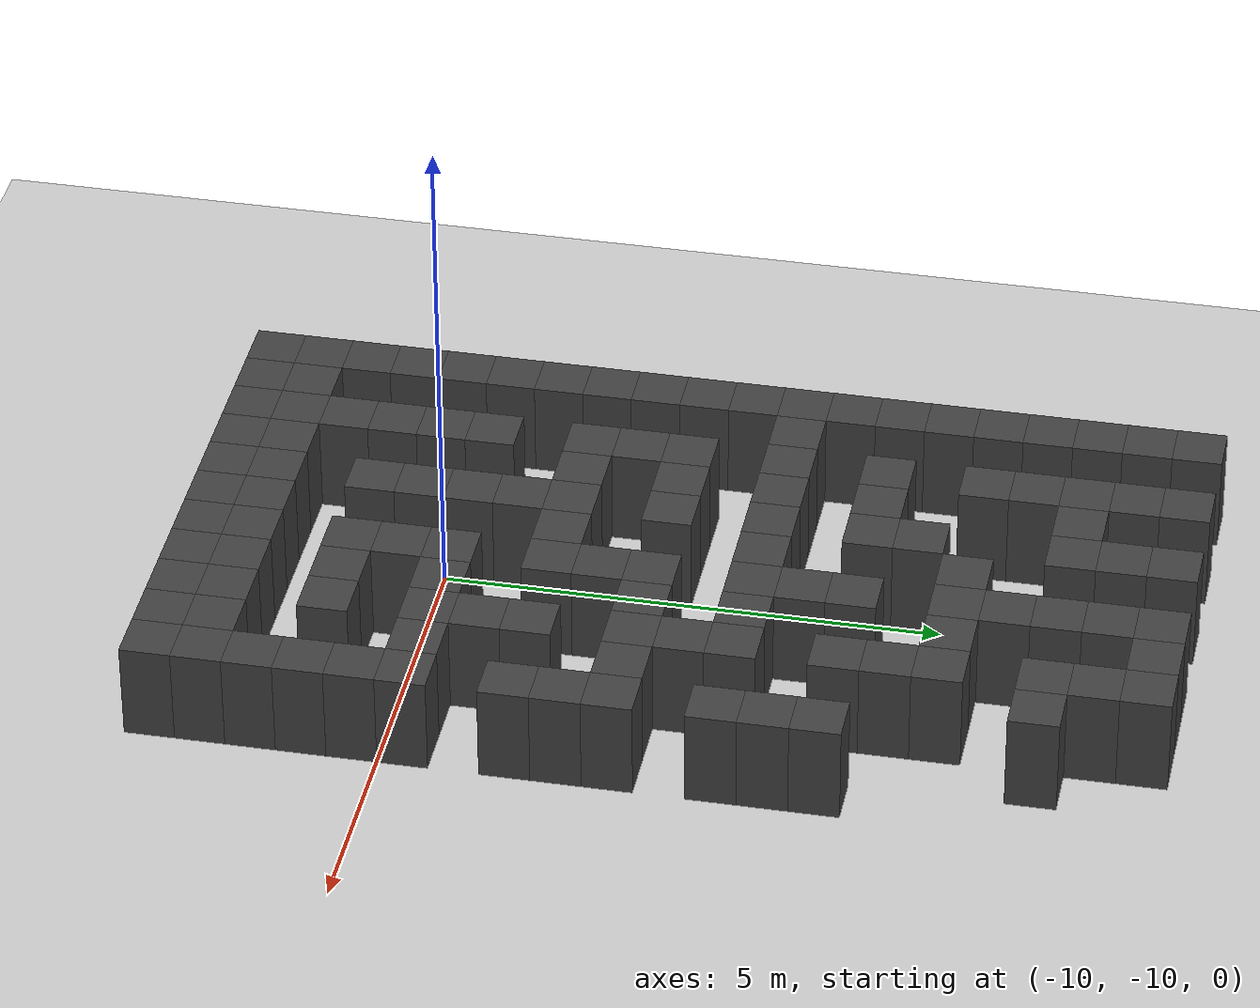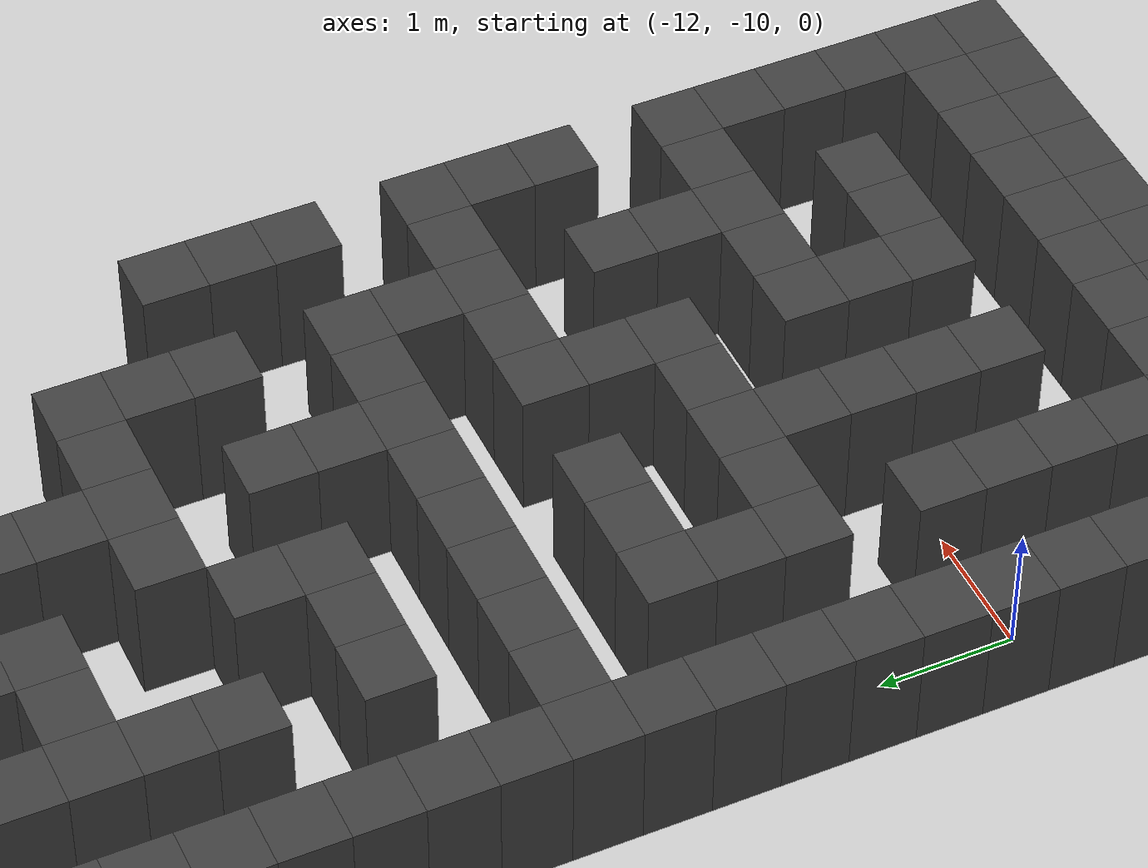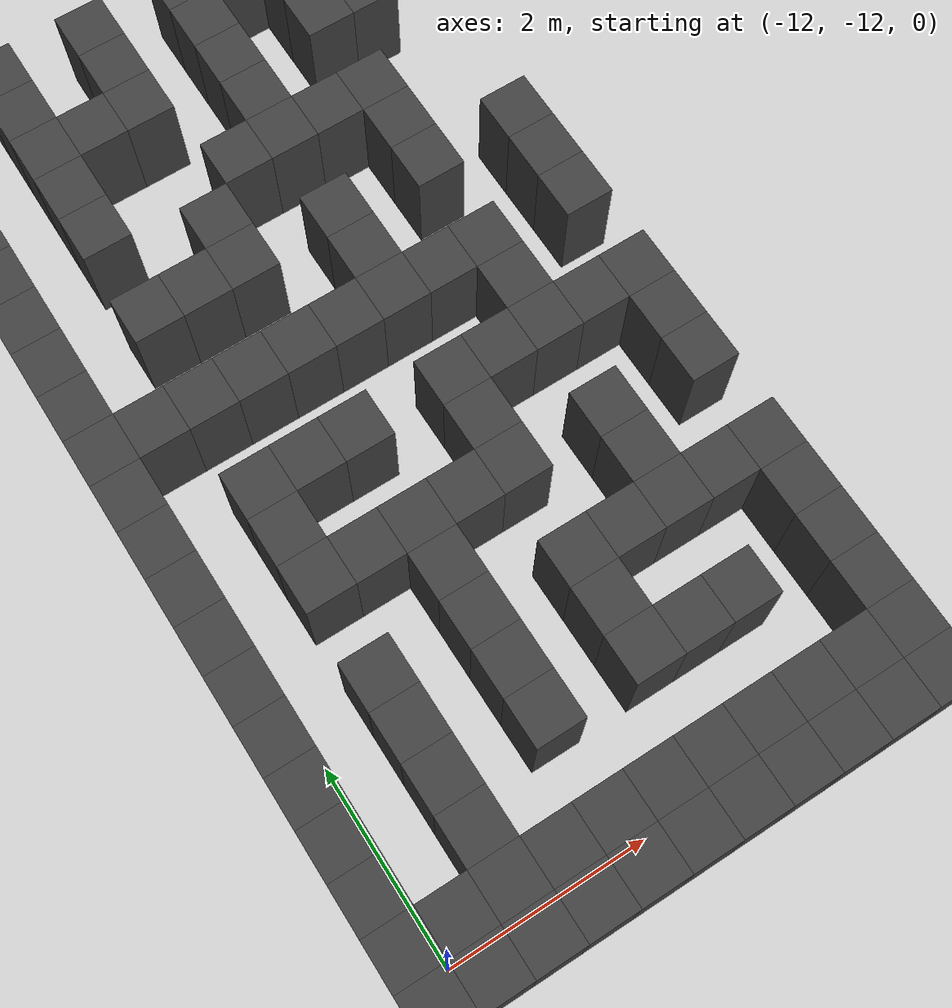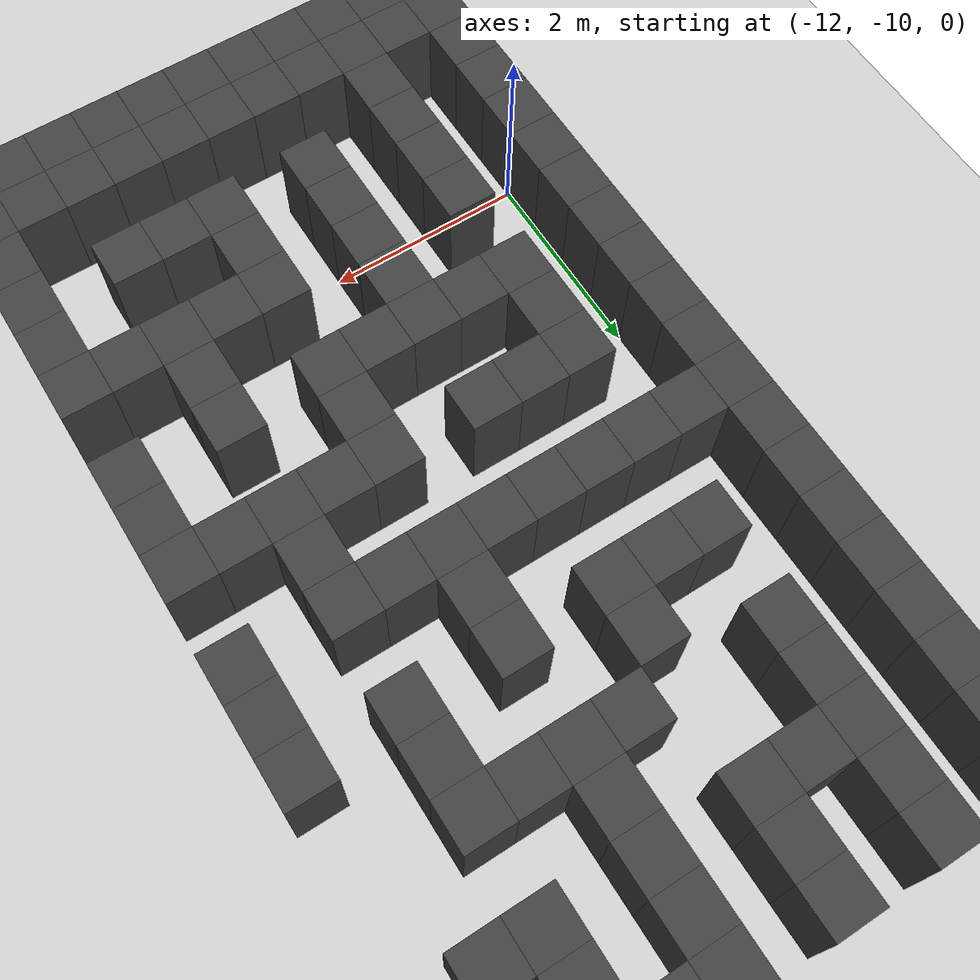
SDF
<sdf version="1.7">
 <world name="map_19815">
  <model name="ground_plane">
   <static>true</static>
   <link name="link">
    <collision name="collision">
     <geometry><plane><normal>0 0 1</normal><size>200 200</size></plane></geometry>
    </collision>
    <visual name="visual">
     <geometry><plane><normal>0 0 1</normal><size>200 200</size></plane></geometry>
     <material><ambient>0.8 0.8 0.8 1</ambient><diffuse>0.8 0.8 0.8 1</diffuse></material>
    </visual>
   </link>
  </model>
  <model name="maze_environment">
   <static>true</static>
   <link name="wall_782">
    <pose>-12.250 -2.750 0.500 0 0 0</pose>
    <collision name="col"><geometry><box><size>0.5 0.5 1.0</size></box></geometry></collision>
    <visual name="vis">
     <geometry><box><size>0.5 0.5 1.0</size></box></geometry>
     <material><ambient>0.15 0.15 0.15 1</ambient><diffuse>0.25 0.25 0.25 1</diffuse></material>
    </visual>
   </link>
   <link name="wall_783">
    <pose>-11.250 -2.750 0.500 0 0 0</pose>
    <collision name="col"><geometry><box><size>0.5 0.5 1.0</size></box></geometry></collision>
    <visual name="vis">
     <geometry><box><size>0.5 0.5 1.0</size></box></geometry>
     <material><ambient>0.15 0.15 0.15 1</ambient><diffuse>0.25 0.25 0.25 1</diffuse></material>
    </visual>
   </link>
   <link name="wall_784">
    <pose>-10.250 -2.750 0.500 0 0 0</pose>
    <collision name="col"><geometry><box><size>0.5 0.5 1.0</size></box></geometry></collision>
    <visual name="vis">
     <geometry><box><size>0.5 0.5 1.0</size></box></geometry>
     <material><ambient>0.15 0.15 0.15 1</ambient><diffuse>0.25 0.25 0.25 1</diffuse></material>
    </visual>
   </link>
   <link name="wall_785">
    <pose>-9.250 -2.750 0.500 0 0 0</pose>
    <collision name="col"><geometry><box><size>0.5 0.5 1.0</size></box></geometry></collision>
    <visual name="vis">
     <geometry><box><size>0.5 0.5 1.0</size></box></geometry>
     <material><ambient>0.15 0.15 0.15 1</ambient><diffuse>0.25 0.25 0.25 1</diffuse></material>
    </visual>
   </link>
   <link name="wall_786">
    <pose>-8.750 -2.750 0.500 0 0 0</pose>
    <collision name="col"><geometry><box><size>0.5 0.5 1.0</size></box></geometry></collision>
    <visual name="vis">
     <geometry><box><size>0.5 0.5 1.0</size></box></geometry>
     <material><ambient>0.15 0.15 0.15 1</ambient><diffuse>0.25 0.25 0.25 1</diffuse></material>
    </visual>
   </link>
   <link name="wall_787">
    <pose>-8.250 -2.750 0.500 0 0 0</pose>
    <collision name="col"><geometry><box><size>0.5 0.5 1.0</size></box></geometry></collision>
    <visual name="vis">
     <geometry><box><size>0.5 0.5 1.0</size></box></geometry>
     <material><ambient>0.15 0.15 0.15 1</ambient><diffuse>0.25 0.25 0.25 1</diffuse></material>
    </visual>
   </link>
   <link name="wall_817">
    <pose>-12.250 -3.250 0.500 0 0 0</pose>
    <collision name="col"><geometry><box><size>0.5 0.5 1.0</size></box></geometry></collision>
    <visual name="vis">
     <geometry><box><size>0.5 0.5 1.0</size></box></geometry>
     <material><ambient>0.15 0.15 0.15 1</ambient><diffuse>0.25 0.25 0.25 1</diffuse></material>
    </visual>
   </link>
   <link name="wall_818">
    <pose>-11.250 -3.250 0.500 0 0 0</pose>
    <collision name="col"><geometry><box><size>0.5 0.5 1.0</size></box></geometry></collision>
    <visual name="vis">
     <geometry><box><size>0.5 0.5 1.0</size></box></geometry>
     <material><ambient>0.15 0.15 0.15 1</ambient><diffuse>0.25 0.25 0.25 1</diffuse></material>
    </visual>
   </link>
   <link name="wall_819">
    <pose>-10.250 -3.250 0.500 0 0 0</pose>
    <collision name="col"><geometry><box><size>0.5 0.5 1.0</size></box></geometry></collision>
    <visual name="vis">
     <geometry><box><size>0.5 0.5 1.0</size></box></geometry>
     <material><ambient>0.15 0.15 0.15 1</ambient><diffuse>0.25 0.25 0.25 1</diffuse></material>
    </visual>
   </link>
   <link name="wall_820">
    <pose>-9.250 -3.250 0.500 0 0 0</pose>
    <collision name="col"><geometry><box><size>0.5 0.5 1.0</size></box></geometry></collision>
    <visual name="vis">
     <geometry><box><size>0.5 0.5 1.0</size></box></geometry>
     <material><ambient>0.15 0.15 0.15 1</ambient><diffuse>0.25 0.25 0.25 1</diffuse></material>
    </visual>
   </link>
   <link name="wall_821">
    <pose>-8.250 -3.250 0.500 0 0 0</pose>
    <collision name="col"><geometry><box><size>0.5 0.5 1.0</size></box></geometry></collision>
    <visual name="vis">
     <geometry><box><size>0.5 0.5 1.0</size></box></geometry>
     <material><ambient>0.15 0.15 0.15 1</ambient><diffuse>0.25 0.25 0.25 1</diffuse></material>
    </visual>
   </link>
   <link name="wall_836">
    <pose>-12.250 -3.750 0.500 0 0 0</pose>
    <collision name="col"><geometry><box><size>0.5 0.5 1.0</size></box></geometry></collision>
    <visual name="vis">
     <geometry><box><size>0.5 0.5 1.0</size></box></geometry>
     <material><ambient>0.15 0.15 0.15 1</ambient><diffuse>0.25 0.25 0.25 1</diffuse></material>
    </visual>
   </link>
   <link name="wall_837">
    <pose>-11.250 -3.750 0.500 0 0 0</pose>
    <collision name="col"><geometry><box><size>0.5 0.5 1.0</size></box></geometry></collision>
    <visual name="vis">
     <geometry><box><size>0.5 0.5 1.0</size></box></geometry>
     <material><ambient>0.15 0.15 0.15 1</ambient><diffuse>0.25 0.25 0.25 1</diffuse></material>
    </visual>
   </link>
   <link name="wall_838">
    <pose>-10.750 -3.750 0.500 0 0 0</pose>
    <collision name="col"><geometry><box><size>0.5 0.5 1.0</size></box></geometry></collision>
    <visual name="vis">
     <geometry><box><size>0.5 0.5 1.0</size></box></geometry>
     <material><ambient>0.15 0.15 0.15 1</ambient><diffuse>0.25 0.25 0.25 1</diffuse></material>
    </visual>
   </link>
   <link name="wall_839">
    <pose>-10.250 -3.750 0.500 0 0 0</pose>
    <collision name="col"><geometry><box><size>0.5 0.5 1.0</size></box></geometry></collision>
    <visual name="vis">
     <geometry><box><size>0.5 0.5 1.0</size></box></geometry>
     <material><ambient>0.15 0.15 0.15 1</ambient><diffuse>0.25 0.25 0.25 1</diffuse></material>
    </visual>
   </link>
   <link name="wall_840">
    <pose>-9.250 -3.750 0.500 0 0 0</pose>
    <collision name="col"><geometry><box><size>0.5 0.5 1.0</size></box></geometry></collision>
    <visual name="vis">
     <geometry><box><size>0.5 0.5 1.0</size></box></geometry>
     <material><ambient>0.15 0.15 0.15 1</ambient><diffuse>0.25 0.25 0.25 1</diffuse></material>
    </visual>
   </link>
   <link name="wall_841">
    <pose>-8.250 -3.750 0.500 0 0 0</pose>
    <collision name="col"><geometry><box><size>0.5 0.5 1.0</size></box></geometry></collision>
    <visual name="vis">
     <geometry><box><size>0.5 0.5 1.0</size></box></geometry>
     <material><ambient>0.15 0.15 0.15 1</ambient><diffuse>0.25 0.25 0.25 1</diffuse></material>
    </visual>
   </link>
   <link name="wall_842">
    <pose>-7.750 -3.750 0.500 0 0 0</pose>
    <collision name="col"><geometry><box><size>0.5 0.5 1.0</size></box></geometry></collision>
    <visual name="vis">
     <geometry><box><size>0.5 0.5 1.0</size></box></geometry>
     <material><ambient>0.15 0.15 0.15 1</ambient><diffuse>0.25 0.25 0.25 1</diffuse></material>
    </visual>
   </link>
   <link name="wall_871">
    <pose>-12.250 -4.250 0.500 0 0 0</pose>
    <collision name="col"><geometry><box><size>0.5 0.5 1.0</size></box></geometry></collision>
    <visual name="vis">
     <geometry><box><size>0.5 0.5 1.0</size></box></geometry>
     <material><ambient>0.15 0.15 0.15 1</ambient><diffuse>0.25 0.25 0.25 1</diffuse></material>
    </visual>
   </link>
   <link name="wall_872">
    <pose>-11.250 -4.250 0.500 0 0 0</pose>
    <collision name="col"><geometry><box><size>0.5 0.5 1.0</size></box></geometry></collision>
    <visual name="vis">
     <geometry><box><size>0.5 0.5 1.0</size></box></geometry>
     <material><ambient>0.15 0.15 0.15 1</ambient><diffuse>0.25 0.25 0.25 1</diffuse></material>
    </visual>
   </link>
   <link name="wall_873">
    <pose>-9.250 -4.250 0.500 0 0 0</pose>
    <collision name="col"><geometry><box><size>0.5 0.5 1.0</size></box></geometry></collision>
    <visual name="vis">
     <geometry><box><size>0.5 0.5 1.0</size></box></geometry>
     <material><ambient>0.15 0.15 0.15 1</ambient><diffuse>0.25 0.25 0.25 1</diffuse></material>
    </visual>
   </link>
   <link name="wall_886">
    <pose>-12.250 -4.750 0.500 0 0 0</pose>
    <collision name="col"><geometry><box><size>0.5 0.5 1.0</size></box></geometry></collision>
    <visual name="vis">
     <geometry><box><size>0.5 0.5 1.0</size></box></geometry>
     <material><ambient>0.15 0.15 0.15 1</ambient><diffuse>0.25 0.25 0.25 1</diffuse></material>
    </visual>
   </link>
   <link name="wall_887">
    <pose>-11.250 -4.750 0.500 0 0 0</pose>
    <collision name="col"><geometry><box><size>0.5 0.5 1.0</size></box></geometry></collision>
    <visual name="vis">
     <geometry><box><size>0.5 0.5 1.0</size></box></geometry>
     <material><ambient>0.15 0.15 0.15 1</ambient><diffuse>0.25 0.25 0.25 1</diffuse></material>
    </visual>
   </link>
   <link name="wall_888">
    <pose>-9.750 -4.750 0.500 0 0 0</pose>
    <collision name="col"><geometry><box><size>0.5 0.5 1.0</size></box></geometry></collision>
    <visual name="vis">
     <geometry><box><size>0.5 0.5 1.0</size></box></geometry>
     <material><ambient>0.15 0.15 0.15 1</ambient><diffuse>0.25 0.25 0.25 1</diffuse></material>
    </visual>
   </link>
   <link name="wall_889">
    <pose>-9.250 -4.750 0.500 0 0 0</pose>
    <collision name="col"><geometry><box><size>0.5 0.5 1.0</size></box></geometry></collision>
    <visual name="vis">
     <geometry><box><size>0.5 0.5 1.0</size></box></geometry>
     <material><ambient>0.15 0.15 0.15 1</ambient><diffuse>0.25 0.25 0.25 1</diffuse></material>
    </visual>
   </link>
   <link name="wall_890">
    <pose>-8.750 -4.750 0.500 0 0 0</pose>
    <collision name="col"><geometry><box><size>0.5 0.5 1.0</size></box></geometry></collision>
    <visual name="vis">
     <geometry><box><size>0.5 0.5 1.0</size></box></geometry>
     <material><ambient>0.15 0.15 0.15 1</ambient><diffuse>0.25 0.25 0.25 1</diffuse></material>
    </visual>
   </link>
   <link name="wall_891">
    <pose>-8.250 -4.750 0.500 0 0 0</pose>
    <collision name="col"><geometry><box><size>0.5 0.5 1.0</size></box></geometry></collision>
    <visual name="vis">
     <geometry><box><size>0.5 0.5 1.0</size></box></geometry>
     <material><ambient>0.15 0.15 0.15 1</ambient><diffuse>0.25 0.25 0.25 1</diffuse></material>
    </visual>
   </link>
   <link name="wall_924">
    <pose>-12.250 -5.250 0.500 0 0 0</pose>
    <collision name="col"><geometry><box><size>0.5 0.5 1.0</size></box></geometry></collision>
    <visual name="vis">
     <geometry><box><size>0.5 0.5 1.0</size></box></geometry>
     <material><ambient>0.15 0.15 0.15 1</ambient><diffuse>0.25 0.25 0.25 1</diffuse></material>
    </visual>
   </link>
   <link name="wall_925">
    <pose>-10.250 -5.250 0.500 0 0 0</pose>
    <collision name="col"><geometry><box><size>0.5 0.5 1.0</size></box></geometry></collision>
    <visual name="vis">
     <geometry><box><size>0.5 0.5 1.0</size></box></geometry>
     <material><ambient>0.15 0.15 0.15 1</ambient><diffuse>0.25 0.25 0.25 1</diffuse></material>
    </visual>
   </link>
   <link name="wall_926">
    <pose>-8.250 -5.250 0.500 0 0 0</pose>
    <collision name="col"><geometry><box><size>0.5 0.5 1.0</size></box></geometry></collision>
    <visual name="vis">
     <geometry><box><size>0.5 0.5 1.0</size></box></geometry>
     <material><ambient>0.15 0.15 0.15 1</ambient><diffuse>0.25 0.25 0.25 1</diffuse></material>
    </visual>
   </link>
   <link name="wall_937">
    <pose>-12.250 -5.750 0.500 0 0 0</pose>
    <collision name="col"><geometry><box><size>0.5 0.5 1.0</size></box></geometry></collision>
    <visual name="vis">
     <geometry><box><size>0.5 0.5 1.0</size></box></geometry>
     <material><ambient>0.15 0.15 0.15 1</ambient><diffuse>0.25 0.25 0.25 1</diffuse></material>
    </visual>
   </link>
   <link name="wall_938">
    <pose>-11.250 -5.750 0.500 0 0 0</pose>
    <collision name="col"><geometry><box><size>0.5 0.5 1.0</size></box></geometry></collision>
    <visual name="vis">
     <geometry><box><size>0.5 0.5 1.0</size></box></geometry>
     <material><ambient>0.15 0.15 0.15 1</ambient><diffuse>0.25 0.25 0.25 1</diffuse></material>
    </visual>
   </link>
   <link name="wall_939">
    <pose>-10.750 -5.750 0.500 0 0 0</pose>
    <collision name="col"><geometry><box><size>0.5 0.5 1.0</size></box></geometry></collision>
    <visual name="vis">
     <geometry><box><size>0.5 0.5 1.0</size></box></geometry>
     <material><ambient>0.15 0.15 0.15 1</ambient><diffuse>0.25 0.25 0.25 1</diffuse></material>
    </visual>
   </link>
   <link name="wall_940">
    <pose>-10.250 -5.750 0.500 0 0 0</pose>
    <collision name="col"><geometry><box><size>0.5 0.5 1.0</size></box></geometry></collision>
    <visual name="vis">
     <geometry><box><size>0.5 0.5 1.0</size></box></geometry>
     <material><ambient>0.15 0.15 0.15 1</ambient><diffuse>0.25 0.25 0.25 1</diffuse></material>
    </visual>
   </link>
   <link name="wall_941">
    <pose>-9.250 -5.750 0.500 0 0 0</pose>
    <collision name="col"><geometry><box><size>0.5 0.5 1.0</size></box></geometry></collision>
    <visual name="vis">
     <geometry><box><size>0.5 0.5 1.0</size></box></geometry>
     <material><ambient>0.15 0.15 0.15 1</ambient><diffuse>0.25 0.25 0.25 1</diffuse></material>
    </visual>
   </link>
   <link name="wall_942">
    <pose>-8.250 -5.750 0.500 0 0 0</pose>
    <collision name="col"><geometry><box><size>0.5 0.5 1.0</size></box></geometry></collision>
    <visual name="vis">
     <geometry><box><size>0.5 0.5 1.0</size></box></geometry>
     <material><ambient>0.15 0.15 0.15 1</ambient><diffuse>0.25 0.25 0.25 1</diffuse></material>
    </visual>
   </link>
   <link name="wall_943">
    <pose>-7.250 -5.750 0.500 0 0 0</pose>
    <collision name="col"><geometry><box><size>0.5 0.5 1.0</size></box></geometry></collision>
    <visual name="vis">
     <geometry><box><size>0.5 0.5 1.0</size></box></geometry>
     <material><ambient>0.15 0.15 0.15 1</ambient><diffuse>0.25 0.25 0.25 1</diffuse></material>
    </visual>
   </link>
   <link name="wall_973">
    <pose>-12.250 -6.250 0.500 0 0 0</pose>
    <collision name="col"><geometry><box><size>0.5 0.5 1.0</size></box></geometry></collision>
    <visual name="vis">
     <geometry><box><size>0.5 0.5 1.0</size></box></geometry>
     <material><ambient>0.15 0.15 0.15 1</ambient><diffuse>0.25 0.25 0.25 1</diffuse></material>
    </visual>
   </link>
   <link name="wall_974">
    <pose>-9.250 -6.250 0.500 0 0 0</pose>
    <collision name="col"><geometry><box><size>0.5 0.5 1.0</size></box></geometry></collision>
    <visual name="vis">
     <geometry><box><size>0.5 0.5 1.0</size></box></geometry>
     <material><ambient>0.15 0.15 0.15 1</ambient><diffuse>0.25 0.25 0.25 1</diffuse></material>
    </visual>
   </link>
   <link name="wall_975">
    <pose>-7.250 -6.250 0.500 0 0 0</pose>
    <collision name="col"><geometry><box><size>0.5 0.5 1.0</size></box></geometry></collision>
    <visual name="vis">
     <geometry><box><size>0.5 0.5 1.0</size></box></geometry>
     <material><ambient>0.15 0.15 0.15 1</ambient><diffuse>0.25 0.25 0.25 1</diffuse></material>
    </visual>
   </link>
   <link name="wall_989">
    <pose>-12.250 -6.750 0.500 0 0 0</pose>
    <collision name="col"><geometry><box><size>0.5 0.5 1.0</size></box></geometry></collision>
    <visual name="vis">
     <geometry><box><size>0.5 0.5 1.0</size></box></geometry>
     <material><ambient>0.15 0.15 0.15 1</ambient><diffuse>0.25 0.25 0.25 1</diffuse></material>
    </visual>
   </link>
   <link name="wall_990">
    <pose>-11.750 -6.750 0.500 0 0 0</pose>
    <collision name="col"><geometry><box><size>0.5 0.5 1.0</size></box></geometry></collision>
    <visual name="vis">
     <geometry><box><size>0.5 0.5 1.0</size></box></geometry>
     <material><ambient>0.15 0.15 0.15 1</ambient><diffuse>0.25 0.25 0.25 1</diffuse></material>
    </visual>
   </link>
   <link name="wall_991">
    <pose>-11.250 -6.750 0.500 0 0 0</pose>
    <collision name="col"><geometry><box><size>0.5 0.5 1.0</size></box></geometry></collision>
    <visual name="vis">
     <geometry><box><size>0.5 0.5 1.0</size></box></geometry>
     <material><ambient>0.15 0.15 0.15 1</ambient><diffuse>0.25 0.25 0.25 1</diffuse></material>
    </visual>
   </link>
   <link name="wall_992">
    <pose>-10.750 -6.750 0.500 0 0 0</pose>
    <collision name="col"><geometry><box><size>0.5 0.5 1.0</size></box></geometry></collision>
    <visual name="vis">
     <geometry><box><size>0.5 0.5 1.0</size></box></geometry>
     <material><ambient>0.15 0.15 0.15 1</ambient><diffuse>0.25 0.25 0.25 1</diffuse></material>
    </visual>
   </link>
   <link name="wall_993">
    <pose>-10.250 -6.750 0.500 0 0 0</pose>
    <collision name="col"><geometry><box><size>0.5 0.5 1.0</size></box></geometry></collision>
    <visual name="vis">
     <geometry><box><size>0.5 0.5 1.0</size></box></geometry>
     <material><ambient>0.15 0.15 0.15 1</ambient><diffuse>0.25 0.25 0.25 1</diffuse></material>
    </visual>
   </link>
   <link name="wall_994">
    <pose>-9.750 -6.750 0.500 0 0 0</pose>
    <collision name="col"><geometry><box><size>0.5 0.5 1.0</size></box></geometry></collision>
    <visual name="vis">
     <geometry><box><size>0.5 0.5 1.0</size></box></geometry>
     <material><ambient>0.15 0.15 0.15 1</ambient><diffuse>0.25 0.25 0.25 1</diffuse></material>
    </visual>
   </link>
   <link name="wall_995">
    <pose>-9.250 -6.750 0.500 0 0 0</pose>
    <collision name="col"><geometry><box><size>0.5 0.5 1.0</size></box></geometry></collision>
    <visual name="vis">
     <geometry><box><size>0.5 0.5 1.0</size></box></geometry>
     <material><ambient>0.15 0.15 0.15 1</ambient><diffuse>0.25 0.25 0.25 1</diffuse></material>
    </visual>
   </link>
   <link name="wall_996">
    <pose>-8.750 -6.750 0.500 0 0 0</pose>
    <collision name="col"><geometry><box><size>0.5 0.5 1.0</size></box></geometry></collision>
    <visual name="vis">
     <geometry><box><size>0.5 0.5 1.0</size></box></geometry>
     <material><ambient>0.15 0.15 0.15 1</ambient><diffuse>0.25 0.25 0.25 1</diffuse></material>
    </visual>
   </link>
   <link name="wall_997">
    <pose>-8.250 -6.750 0.500 0 0 0</pose>
    <collision name="col"><geometry><box><size>0.5 0.5 1.0</size></box></geometry></collision>
    <visual name="vis">
     <geometry><box><size>0.5 0.5 1.0</size></box></geometry>
     <material><ambient>0.15 0.15 0.15 1</ambient><diffuse>0.25 0.25 0.25 1</diffuse></material>
    </visual>
   </link>
   <link name="wall_998">
    <pose>-7.250 -6.750 0.500 0 0 0</pose>
    <collision name="col"><geometry><box><size>0.5 0.5 1.0</size></box></geometry></collision>
    <visual name="vis">
     <geometry><box><size>0.5 0.5 1.0</size></box></geometry>
     <material><ambient>0.15 0.15 0.15 1</ambient><diffuse>0.25 0.25 0.25 1</diffuse></material>
    </visual>
   </link>
   <link name="wall_1024">
    <pose>-12.250 -7.250 0.500 0 0 0</pose>
    <collision name="col"><geometry><box><size>0.5 0.5 1.0</size></box></geometry></collision>
    <visual name="vis">
     <geometry><box><size>0.5 0.5 1.0</size></box></geometry>
     <material><ambient>0.15 0.15 0.15 1</ambient><diffuse>0.25 0.25 0.25 1</diffuse></material>
    </visual>
   </link>
   <link name="wall_1025">
    <pose>-8.250 -7.250 0.500 0 0 0</pose>
    <collision name="col"><geometry><box><size>0.5 0.5 1.0</size></box></geometry></collision>
    <visual name="vis">
     <geometry><box><size>0.5 0.5 1.0</size></box></geometry>
     <material><ambient>0.15 0.15 0.15 1</ambient><diffuse>0.25 0.25 0.25 1</diffuse></material>
    </visual>
   </link>
   <link name="wall_1039">
    <pose>-12.250 -7.750 0.500 0 0 0</pose>
    <collision name="col"><geometry><box><size>0.5 0.5 1.0</size></box></geometry></collision>
    <visual name="vis">
     <geometry><box><size>0.5 0.5 1.0</size></box></geometry>
     <material><ambient>0.15 0.15 0.15 1</ambient><diffuse>0.25 0.25 0.25 1</diffuse></material>
    </visual>
   </link>
   <link name="wall_1040">
    <pose>-11.250 -7.750 0.500 0 0 0</pose>
    <collision name="col"><geometry><box><size>0.5 0.5 1.0</size></box></geometry></collision>
    <visual name="vis">
     <geometry><box><size>0.5 0.5 1.0</size></box></geometry>
     <material><ambient>0.15 0.15 0.15 1</ambient><diffuse>0.25 0.25 0.25 1</diffuse></material>
    </visual>
   </link>
   <link name="wall_1041">
    <pose>-10.750 -7.750 0.500 0 0 0</pose>
    <collision name="col"><geometry><box><size>0.5 0.5 1.0</size></box></geometry></collision>
    <visual name="vis">
     <geometry><box><size>0.5 0.5 1.0</size></box></geometry>
     <material><ambient>0.15 0.15 0.15 1</ambient><diffuse>0.25 0.25 0.25 1</diffuse></material>
    </visual>
   </link>
   <link name="wall_1042">
    <pose>-10.250 -7.750 0.500 0 0 0</pose>
    <collision name="col"><geometry><box><size>0.5 0.5 1.0</size></box></geometry></collision>
    <visual name="vis">
     <geometry><box><size>0.5 0.5 1.0</size></box></geometry>
     <material><ambient>0.15 0.15 0.15 1</ambient><diffuse>0.25 0.25 0.25 1</diffuse></material>
    </visual>
   </link>
   <link name="wall_1043">
    <pose>-9.250 -7.750 0.500 0 0 0</pose>
    <collision name="col"><geometry><box><size>0.5 0.5 1.0</size></box></geometry></collision>
    <visual name="vis">
     <geometry><box><size>0.5 0.5 1.0</size></box></geometry>
     <material><ambient>0.15 0.15 0.15 1</ambient><diffuse>0.25 0.25 0.25 1</diffuse></material>
    </visual>
   </link>
   <link name="wall_1044">
    <pose>-8.750 -7.750 0.500 0 0 0</pose>
    <collision name="col"><geometry><box><size>0.5 0.5 1.0</size></box></geometry></collision>
    <visual name="vis">
     <geometry><box><size>0.5 0.5 1.0</size></box></geometry>
     <material><ambient>0.15 0.15 0.15 1</ambient><diffuse>0.25 0.25 0.25 1</diffuse></material>
    </visual>
   </link>
   <link name="wall_1045">
    <pose>-8.250 -7.750 0.500 0 0 0</pose>
    <collision name="col"><geometry><box><size>0.5 0.5 1.0</size></box></geometry></collision>
    <visual name="vis">
     <geometry><box><size>0.5 0.5 1.0</size></box></geometry>
     <material><ambient>0.15 0.15 0.15 1</ambient><diffuse>0.25 0.25 0.25 1</diffuse></material>
    </visual>
   </link>
   <link name="wall_1046">
    <pose>-7.750 -7.750 0.500 0 0 0</pose>
    <collision name="col"><geometry><box><size>0.5 0.5 1.0</size></box></geometry></collision>
    <visual name="vis">
     <geometry><box><size>0.5 0.5 1.0</size></box></geometry>
     <material><ambient>0.15 0.15 0.15 1</ambient><diffuse>0.25 0.25 0.25 1</diffuse></material>
    </visual>
   </link>
   <link name="wall_1047">
    <pose>-7.250 -7.750 0.500 0 0 0</pose>
    <collision name="col"><geometry><box><size>0.5 0.5 1.0</size></box></geometry></collision>
    <visual name="vis">
     <geometry><box><size>0.5 0.5 1.0</size></box></geometry>
     <material><ambient>0.15 0.15 0.15 1</ambient><diffuse>0.25 0.25 0.25 1</diffuse></material>
    </visual>
   </link>
   <link name="wall_1076">
    <pose>-12.250 -8.250 0.500 0 0 0</pose>
    <collision name="col"><geometry><box><size>0.5 0.5 1.0</size></box></geometry></collision>
    <visual name="vis">
     <geometry><box><size>0.5 0.5 1.0</size></box></geometry>
     <material><ambient>0.15 0.15 0.15 1</ambient><diffuse>0.25 0.25 0.25 1</diffuse></material>
    </visual>
   </link>
   <link name="wall_1077">
    <pose>-11.250 -8.250 0.500 0 0 0</pose>
    <collision name="col"><geometry><box><size>0.5 0.5 1.0</size></box></geometry></collision>
    <visual name="vis">
     <geometry><box><size>0.5 0.5 1.0</size></box></geometry>
     <material><ambient>0.15 0.15 0.15 1</ambient><diffuse>0.25 0.25 0.25 1</diffuse></material>
    </visual>
   </link>
   <link name="wall_1078">
    <pose>-9.250 -8.250 0.500 0 0 0</pose>
    <collision name="col"><geometry><box><size>0.5 0.5 1.0</size></box></geometry></collision>
    <visual name="vis">
     <geometry><box><size>0.5 0.5 1.0</size></box></geometry>
     <material><ambient>0.15 0.15 0.15 1</ambient><diffuse>0.25 0.25 0.25 1</diffuse></material>
    </visual>
   </link>
   <link name="wall_1079">
    <pose>-7.250 -8.250 0.500 0 0 0</pose>
    <collision name="col"><geometry><box><size>0.5 0.5 1.0</size></box></geometry></collision>
    <visual name="vis">
     <geometry><box><size>0.5 0.5 1.0</size></box></geometry>
     <material><ambient>0.15 0.15 0.15 1</ambient><diffuse>0.25 0.25 0.25 1</diffuse></material>
    </visual>
   </link>
   <link name="wall_1092">
    <pose>-12.250 -8.750 0.500 0 0 0</pose>
    <collision name="col"><geometry><box><size>0.5 0.5 1.0</size></box></geometry></collision>
    <visual name="vis">
     <geometry><box><size>0.5 0.5 1.0</size></box></geometry>
     <material><ambient>0.15 0.15 0.15 1</ambient><diffuse>0.25 0.25 0.25 1</diffuse></material>
    </visual>
   </link>
   <link name="wall_1093">
    <pose>-11.250 -8.750 0.500 0 0 0</pose>
    <collision name="col"><geometry><box><size>0.5 0.5 1.0</size></box></geometry></collision>
    <visual name="vis">
     <geometry><box><size>0.5 0.5 1.0</size></box></geometry>
     <material><ambient>0.15 0.15 0.15 1</ambient><diffuse>0.25 0.25 0.25 1</diffuse></material>
    </visual>
   </link>
   <link name="wall_1094">
    <pose>-10.750 -8.750 0.500 0 0 0</pose>
    <collision name="col"><geometry><box><size>0.5 0.5 1.0</size></box></geometry></collision>
    <visual name="vis">
     <geometry><box><size>0.5 0.5 1.0</size></box></geometry>
     <material><ambient>0.15 0.15 0.15 1</ambient><diffuse>0.25 0.25 0.25 1</diffuse></material>
    </visual>
   </link>
   <link name="wall_1095">
    <pose>-10.250 -8.750 0.500 0 0 0</pose>
    <collision name="col"><geometry><box><size>0.5 0.5 1.0</size></box></geometry></collision>
    <visual name="vis">
     <geometry><box><size>0.5 0.5 1.0</size></box></geometry>
     <material><ambient>0.15 0.15 0.15 1</ambient><diffuse>0.25 0.25 0.25 1</diffuse></material>
    </visual>
   </link>
   <link name="wall_1096">
    <pose>-9.750 -8.750 0.500 0 0 0</pose>
    <collision name="col"><geometry><box><size>0.5 0.5 1.0</size></box></geometry></collision>
    <visual name="vis">
     <geometry><box><size>0.5 0.5 1.0</size></box></geometry>
     <material><ambient>0.15 0.15 0.15 1</ambient><diffuse>0.25 0.25 0.25 1</diffuse></material>
    </visual>
   </link>
   <link name="wall_1097">
    <pose>-9.250 -8.750 0.500 0 0 0</pose>
    <collision name="col"><geometry><box><size>0.5 0.5 1.0</size></box></geometry></collision>
    <visual name="vis">
     <geometry><box><size>0.5 0.5 1.0</size></box></geometry>
     <material><ambient>0.15 0.15 0.15 1</ambient><diffuse>0.25 0.25 0.25 1</diffuse></material>
    </visual>
   </link>
   <link name="wall_1098">
    <pose>-8.250 -8.750 0.500 0 0 0</pose>
    <collision name="col"><geometry><box><size>0.5 0.5 1.0</size></box></geometry></collision>
    <visual name="vis">
     <geometry><box><size>0.5 0.5 1.0</size></box></geometry>
     <material><ambient>0.15 0.15 0.15 1</ambient><diffuse>0.25 0.25 0.25 1</diffuse></material>
    </visual>
   </link>
   <link name="wall_1099">
    <pose>-7.250 -8.750 0.500 0 0 0</pose>
    <collision name="col"><geometry><box><size>0.5 0.5 1.0</size></box></geometry></collision>
    <visual name="vis">
     <geometry><box><size>0.5 0.5 1.0</size></box></geometry>
     <material><ambient>0.15 0.15 0.15 1</ambient><diffuse>0.25 0.25 0.25 1</diffuse></material>
    </visual>
   </link>
   <link name="wall_1126">
    <pose>-12.250 -9.250 0.500 0 0 0</pose>
    <collision name="col"><geometry><box><size>0.5 0.5 1.0</size></box></geometry></collision>
    <visual name="vis">
     <geometry><box><size>0.5 0.5 1.0</size></box></geometry>
     <material><ambient>0.15 0.15 0.15 1</ambient><diffuse>0.25 0.25 0.25 1</diffuse></material>
    </visual>
   </link>
   <link name="wall_1127">
    <pose>-10.250 -9.250 0.500 0 0 0</pose>
    <collision name="col"><geometry><box><size>0.5 0.5 1.0</size></box></geometry></collision>
    <visual name="vis">
     <geometry><box><size>0.5 0.5 1.0</size></box></geometry>
     <material><ambient>0.15 0.15 0.15 1</ambient><diffuse>0.25 0.25 0.25 1</diffuse></material>
    </visual>
   </link>
   <link name="wall_1128">
    <pose>-8.250 -9.250 0.500 0 0 0</pose>
    <collision name="col"><geometry><box><size>0.5 0.5 1.0</size></box></geometry></collision>
    <visual name="vis">
     <geometry><box><size>0.5 0.5 1.0</size></box></geometry>
     <material><ambient>0.15 0.15 0.15 1</ambient><diffuse>0.25 0.25 0.25 1</diffuse></material>
    </visual>
   </link>
   <link name="wall_1141">
    <pose>-12.250 -9.750 0.500 0 0 0</pose>
    <collision name="col"><geometry><box><size>0.5 0.5 1.0</size></box></geometry></collision>
    <visual name="vis">
     <geometry><box><size>0.5 0.5 1.0</size></box></geometry>
     <material><ambient>0.15 0.15 0.15 1</ambient><diffuse>0.25 0.25 0.25 1</diffuse></material>
    </visual>
   </link>
   <link name="wall_1142">
    <pose>-11.250 -9.750 0.500 0 0 0</pose>
    <collision name="col"><geometry><box><size>0.5 0.5 1.0</size></box></geometry></collision>
    <visual name="vis">
     <geometry><box><size>0.5 0.5 1.0</size></box></geometry>
     <material><ambient>0.15 0.15 0.15 1</ambient><diffuse>0.25 0.25 0.25 1</diffuse></material>
    </visual>
   </link>
   <link name="wall_1143">
    <pose>-10.250 -9.750 0.500 0 0 0</pose>
    <collision name="col"><geometry><box><size>0.5 0.5 1.0</size></box></geometry></collision>
    <visual name="vis">
     <geometry><box><size>0.5 0.5 1.0</size></box></geometry>
     <material><ambient>0.15 0.15 0.15 1</ambient><diffuse>0.25 0.25 0.25 1</diffuse></material>
    </visual>
   </link>
   <link name="wall_1144">
    <pose>-9.250 -9.750 0.500 0 0 0</pose>
    <collision name="col"><geometry><box><size>0.5 0.5 1.0</size></box></geometry></collision>
    <visual name="vis">
     <geometry><box><size>0.5 0.5 1.0</size></box></geometry>
     <material><ambient>0.15 0.15 0.15 1</ambient><diffuse>0.25 0.25 0.25 1</diffuse></material>
    </visual>
   </link>
   <link name="wall_1145">
    <pose>-8.750 -9.750 0.500 0 0 0</pose>
    <collision name="col"><geometry><box><size>0.5 0.5 1.0</size></box></geometry></collision>
    <visual name="vis">
     <geometry><box><size>0.5 0.5 1.0</size></box></geometry>
     <material><ambient>0.15 0.15 0.15 1</ambient><diffuse>0.25 0.25 0.25 1</diffuse></material>
    </visual>
   </link>
   <link name="wall_1146">
    <pose>-8.250 -9.750 0.500 0 0 0</pose>
    <collision name="col"><geometry><box><size>0.5 0.5 1.0</size></box></geometry></collision>
    <visual name="vis">
     <geometry><box><size>0.5 0.5 1.0</size></box></geometry>
     <material><ambient>0.15 0.15 0.15 1</ambient><diffuse>0.25 0.25 0.25 1</diffuse></material>
    </visual>
   </link>
   <link name="wall_1147">
    <pose>-7.750 -9.750 0.500 0 0 0</pose>
    <collision name="col"><geometry><box><size>0.5 0.5 1.0</size></box></geometry></collision>
    <visual name="vis">
     <geometry><box><size>0.5 0.5 1.0</size></box></geometry>
     <material><ambient>0.15 0.15 0.15 1</ambient><diffuse>0.25 0.25 0.25 1</diffuse></material>
    </visual>
   </link>
   <link name="wall_1148">
    <pose>-7.250 -9.750 0.500 0 0 0</pose>
    <collision name="col"><geometry><box><size>0.5 0.5 1.0</size></box></geometry></collision>
    <visual name="vis">
     <geometry><box><size>0.5 0.5 1.0</size></box></geometry>
     <material><ambient>0.15 0.15 0.15 1</ambient><diffuse>0.25 0.25 0.25 1</diffuse></material>
    </visual>
   </link>
   <link name="wall_1177">
    <pose>-12.250 -10.250 0.500 0 0 0</pose>
    <collision name="col"><geometry><box><size>0.5 0.5 1.0</size></box></geometry></collision>
    <visual name="vis">
     <geometry><box><size>0.5 0.5 1.0</size></box></geometry>
     <material><ambient>0.15 0.15 0.15 1</ambient><diffuse>0.25 0.25 0.25 1</diffuse></material>
    </visual>
   </link>
   <link name="wall_1178">
    <pose>-11.250 -10.250 0.500 0 0 0</pose>
    <collision name="col"><geometry><box><size>0.5 0.5 1.0</size></box></geometry></collision>
    <visual name="vis">
     <geometry><box><size>0.5 0.5 1.0</size></box></geometry>
     <material><ambient>0.15 0.15 0.15 1</ambient><diffuse>0.25 0.25 0.25 1</diffuse></material>
    </visual>
   </link>
   <link name="wall_1179">
    <pose>-10.250 -10.250 0.500 0 0 0</pose>
    <collision name="col"><geometry><box><size>0.5 0.5 1.0</size></box></geometry></collision>
    <visual name="vis">
     <geometry><box><size>0.5 0.5 1.0</size></box></geometry>
     <material><ambient>0.15 0.15 0.15 1</ambient><diffuse>0.25 0.25 0.25 1</diffuse></material>
    </visual>
   </link>
   <link name="wall_1180">
    <pose>-9.250 -10.250 0.500 0 0 0</pose>
    <collision name="col"><geometry><box><size>0.5 0.5 1.0</size></box></geometry></collision>
    <visual name="vis">
     <geometry><box><size>0.5 0.5 1.0</size></box></geometry>
     <material><ambient>0.15 0.15 0.15 1</ambient><diffuse>0.25 0.25 0.25 1</diffuse></material>
    </visual>
   </link>
   <link name="wall_1181">
    <pose>-7.250 -10.250 0.500 0 0 0</pose>
    <collision name="col"><geometry><box><size>0.5 0.5 1.0</size></box></geometry></collision>
    <visual name="vis">
     <geometry><box><size>0.5 0.5 1.0</size></box></geometry>
     <material><ambient>0.15 0.15 0.15 1</ambient><diffuse>0.25 0.25 0.25 1</diffuse></material>
    </visual>
   </link>
   <link name="wall_1194">
    <pose>-12.250 -10.750 0.500 0 0 0</pose>
    <collision name="col"><geometry><box><size>0.5 0.5 1.0</size></box></geometry></collision>
    <visual name="vis">
     <geometry><box><size>0.5 0.5 1.0</size></box></geometry>
     <material><ambient>0.15 0.15 0.15 1</ambient><diffuse>0.25 0.25 0.25 1</diffuse></material>
    </visual>
   </link>
   <link name="wall_1195">
    <pose>-11.250 -10.750 0.500 0 0 0</pose>
    <collision name="col"><geometry><box><size>0.5 0.5 1.0</size></box></geometry></collision>
    <visual name="vis">
     <geometry><box><size>0.5 0.5 1.0</size></box></geometry>
     <material><ambient>0.15 0.15 0.15 1</ambient><diffuse>0.25 0.25 0.25 1</diffuse></material>
    </visual>
   </link>
   <link name="wall_1196">
    <pose>-10.250 -10.750 0.500 0 0 0</pose>
    <collision name="col"><geometry><box><size>0.5 0.5 1.0</size></box></geometry></collision>
    <visual name="vis">
     <geometry><box><size>0.5 0.5 1.0</size></box></geometry>
     <material><ambient>0.15 0.15 0.15 1</ambient><diffuse>0.25 0.25 0.25 1</diffuse></material>
    </visual>
   </link>
   <link name="wall_1197">
    <pose>-9.250 -10.750 0.500 0 0 0</pose>
    <collision name="col"><geometry><box><size>0.5 0.5 1.0</size></box></geometry></collision>
    <visual name="vis">
     <geometry><box><size>0.5 0.5 1.0</size></box></geometry>
     <material><ambient>0.15 0.15 0.15 1</ambient><diffuse>0.25 0.25 0.25 1</diffuse></material>
    </visual>
   </link>
   <link name="wall_1198">
    <pose>-8.750 -10.750 0.500 0 0 0</pose>
    <collision name="col"><geometry><box><size>0.5 0.5 1.0</size></box></geometry></collision>
    <visual name="vis">
     <geometry><box><size>0.5 0.5 1.0</size></box></geometry>
     <material><ambient>0.15 0.15 0.15 1</ambient><diffuse>0.25 0.25 0.25 1</diffuse></material>
    </visual>
   </link>
   <link name="wall_1199">
    <pose>-8.250 -10.750 0.500 0 0 0</pose>
    <collision name="col"><geometry><box><size>0.5 0.5 1.0</size></box></geometry></collision>
    <visual name="vis">
     <geometry><box><size>0.5 0.5 1.0</size></box></geometry>
     <material><ambient>0.15 0.15 0.15 1</ambient><diffuse>0.25 0.25 0.25 1</diffuse></material>
    </visual>
   </link>
   <link name="wall_1200">
    <pose>-7.250 -10.750 0.500 0 0 0</pose>
    <collision name="col"><geometry><box><size>0.5 0.5 1.0</size></box></geometry></collision>
    <visual name="vis">
     <geometry><box><size>0.5 0.5 1.0</size></box></geometry>
     <material><ambient>0.15 0.15 0.15 1</ambient><diffuse>0.25 0.25 0.25 1</diffuse></material>
    </visual>
   </link>
   <link name="wall_1230">
    <pose>-12.250 -11.250 0.500 0 0 0</pose>
    <collision name="col"><geometry><box><size>0.5 0.5 1.0</size></box></geometry></collision>
    <visual name="vis">
     <geometry><box><size>0.5 0.5 1.0</size></box></geometry>
     <material><ambient>0.15 0.15 0.15 1</ambient><diffuse>0.25 0.25 0.25 1</diffuse></material>
    </visual>
   </link>
   <link name="wall_1231">
    <pose>-11.250 -11.250 0.500 0 0 0</pose>
    <collision name="col"><geometry><box><size>0.5 0.5 1.0</size></box></geometry></collision>
    <visual name="vis">
     <geometry><box><size>0.5 0.5 1.0</size></box></geometry>
     <material><ambient>0.15 0.15 0.15 1</ambient><diffuse>0.25 0.25 0.25 1</diffuse></material>
    </visual>
   </link>
   <link name="wall_1232">
    <pose>-7.250 -11.250 0.500 0 0 0</pose>
    <collision name="col"><geometry><box><size>0.5 0.5 1.0</size></box></geometry></collision>
    <visual name="vis">
     <geometry><box><size>0.5 0.5 1.0</size></box></geometry>
     <material><ambient>0.15 0.15 0.15 1</ambient><diffuse>0.25 0.25 0.25 1</diffuse></material>
    </visual>
   </link>
   <link name="wall_1238">
    <pose>-12.250 -11.750 0.500 0 0 0</pose>
    <collision name="col"><geometry><box><size>0.5 0.5 1.0</size></box></geometry></collision>
    <visual name="vis">
     <geometry><box><size>0.5 0.5 1.0</size></box></geometry>
     <material><ambient>0.15 0.15 0.15 1</ambient><diffuse>0.25 0.25 0.25 1</diffuse></material>
    </visual>
   </link>
   <link name="wall_1239">
    <pose>-11.750 -11.750 0.500 0 0 0</pose>
    <collision name="col"><geometry><box><size>0.5 0.5 1.0</size></box></geometry></collision>
    <visual name="vis">
     <geometry><box><size>0.5 0.5 1.0</size></box></geometry>
     <material><ambient>0.15 0.15 0.15 1</ambient><diffuse>0.25 0.25 0.25 1</diffuse></material>
    </visual>
   </link>
   <link name="wall_1240">
    <pose>-11.250 -11.750 0.500 0 0 0</pose>
    <collision name="col"><geometry><box><size>0.5 0.5 1.0</size></box></geometry></collision>
    <visual name="vis">
     <geometry><box><size>0.5 0.5 1.0</size></box></geometry>
     <material><ambient>0.15 0.15 0.15 1</ambient><diffuse>0.25 0.25 0.25 1</diffuse></material>
    </visual>
   </link>
   <link name="wall_1241">
    <pose>-10.750 -11.750 0.500 0 0 0</pose>
    <collision name="col"><geometry><box><size>0.5 0.5 1.0</size></box></geometry></collision>
    <visual name="vis">
     <geometry><box><size>0.5 0.5 1.0</size></box></geometry>
     <material><ambient>0.15 0.15 0.15 1</ambient><diffuse>0.25 0.25 0.25 1</diffuse></material>
    </visual>
   </link>
   <link name="wall_1242">
    <pose>-10.250 -11.750 0.500 0 0 0</pose>
    <collision name="col"><geometry><box><size>0.5 0.5 1.0</size></box></geometry></collision>
    <visual name="vis">
     <geometry><box><size>0.5 0.5 1.0</size></box></geometry>
     <material><ambient>0.15 0.15 0.15 1</ambient><diffuse>0.25 0.25 0.25 1</diffuse></material>
    </visual>
   </link>
   <link name="wall_1243">
    <pose>-9.750 -11.750 0.500 0 0 0</pose>
    <collision name="col"><geometry><box><size>0.5 0.5 1.0</size></box></geometry></collision>
    <visual name="vis">
     <geometry><box><size>0.5 0.5 1.0</size></box></geometry>
     <material><ambient>0.15 0.15 0.15 1</ambient><diffuse>0.25 0.25 0.25 1</diffuse></material>
    </visual>
   </link>
   <link name="wall_1244">
    <pose>-9.250 -11.750 0.500 0 0 0</pose>
    <collision name="col"><geometry><box><size>0.5 0.5 1.0</size></box></geometry></collision>
    <visual name="vis">
     <geometry><box><size>0.5 0.5 1.0</size></box></geometry>
     <material><ambient>0.15 0.15 0.15 1</ambient><diffuse>0.25 0.25 0.25 1</diffuse></material>
    </visual>
   </link>
   <link name="wall_1245">
    <pose>-8.750 -11.750 0.500 0 0 0</pose>
    <collision name="col"><geometry><box><size>0.5 0.5 1.0</size></box></geometry></collision>
    <visual name="vis">
     <geometry><box><size>0.5 0.5 1.0</size></box></geometry>
     <material><ambient>0.15 0.15 0.15 1</ambient><diffuse>0.25 0.25 0.25 1</diffuse></material>
    </visual>
   </link>
   <link name="wall_1246">
    <pose>-8.250 -11.750 0.500 0 0 0</pose>
    <collision name="col"><geometry><box><size>0.5 0.5 1.0</size></box></geometry></collision>
    <visual name="vis">
     <geometry><box><size>0.5 0.5 1.0</size></box></geometry>
     <material><ambient>0.15 0.15 0.15 1</ambient><diffuse>0.25 0.25 0.25 1</diffuse></material>
    </visual>
   </link>
   <link name="wall_1247">
    <pose>-7.750 -11.750 0.500 0 0 0</pose>
    <collision name="col"><geometry><box><size>0.5 0.5 1.0</size></box></geometry></collision>
    <visual name="vis">
     <geometry><box><size>0.5 0.5 1.0</size></box></geometry>
     <material><ambient>0.15 0.15 0.15 1</ambient><diffuse>0.25 0.25 0.25 1</diffuse></material>
    </visual>
   </link>
   <link name="wall_1248">
    <pose>-7.250 -11.750 0.500 0 0 0</pose>
    <collision name="col"><geometry><box><size>0.5 0.5 1.0</size></box></geometry></collision>
    <visual name="vis">
     <geometry><box><size>0.5 0.5 1.0</size></box></geometry>
     <material><ambient>0.15 0.15 0.15 1</ambient><diffuse>0.25 0.25 0.25 1</diffuse></material>
    </visual>
   </link>
   <link name="wall_1286">
    <pose>-12.250 -12.250 0.500 0 0 0</pose>
    <collision name="col"><geometry><box><size>0.5 0.5 1.0</size></box></geometry></collision>
    <visual name="vis">
     <geometry><box><size>0.5 0.5 1.0</size></box></geometry>
     <material><ambient>0.15 0.15 0.15 1</ambient><diffuse>0.25 0.25 0.25 1</diffuse></material>
    </visual>
   </link>
   <link name="wall_1287">
    <pose>-11.750 -12.250 0.500 0 0 0</pose>
    <collision name="col"><geometry><box><size>0.5 0.5 1.0</size></box></geometry></collision>
    <visual name="vis">
     <geometry><box><size>0.5 0.5 1.0</size></box></geometry>
     <material><ambient>0.15 0.15 0.15 1</ambient><diffuse>0.25 0.25 0.25 1</diffuse></material>
    </visual>
   </link>
   <link name="wall_1288">
    <pose>-11.250 -12.250 0.500 0 0 0</pose>
    <collision name="col"><geometry><box><size>0.5 0.5 1.0</size></box></geometry></collision>
    <visual name="vis">
     <geometry><box><size>0.5 0.5 1.0</size></box></geometry>
     <material><ambient>0.15 0.15 0.15 1</ambient><diffuse>0.25 0.25 0.25 1</diffuse></material>
    </visual>
   </link>
   <link name="wall_1289">
    <pose>-10.750 -12.250 0.500 0 0 0</pose>
    <collision name="col"><geometry><box><size>0.5 0.5 1.0</size></box></geometry></collision>
    <visual name="vis">
     <geometry><box><size>0.5 0.5 1.0</size></box></geometry>
     <material><ambient>0.15 0.15 0.15 1</ambient><diffuse>0.25 0.25 0.25 1</diffuse></material>
    </visual>
   </link>
   <link name="wall_1290">
    <pose>-10.250 -12.250 0.500 0 0 0</pose>
    <collision name="col"><geometry><box><size>0.5 0.5 1.0</size></box></geometry></collision>
    <visual name="vis">
     <geometry><box><size>0.5 0.5 1.0</size></box></geometry>
     <material><ambient>0.15 0.15 0.15 1</ambient><diffuse>0.25 0.25 0.25 1</diffuse></material>
    </visual>
   </link>
   <link name="wall_1291">
    <pose>-9.750 -12.250 0.500 0 0 0</pose>
    <collision name="col"><geometry><box><size>0.5 0.5 1.0</size></box></geometry></collision>
    <visual name="vis">
     <geometry><box><size>0.5 0.5 1.0</size></box></geometry>
     <material><ambient>0.15 0.15 0.15 1</ambient><diffuse>0.25 0.25 0.25 1</diffuse></material>
    </visual>
   </link>
   <link name="wall_1292">
    <pose>-9.250 -12.250 0.500 0 0 0</pose>
    <collision name="col"><geometry><box><size>0.5 0.5 1.0</size></box></geometry></collision>
    <visual name="vis">
     <geometry><box><size>0.5 0.5 1.0</size></box></geometry>
     <material><ambient>0.15 0.15 0.15 1</ambient><diffuse>0.25 0.25 0.25 1</diffuse></material>
    </visual>
   </link>
   <link name="wall_1293">
    <pose>-8.750 -12.250 0.500 0 0 0</pose>
    <collision name="col"><geometry><box><size>0.5 0.5 1.0</size></box></geometry></collision>
    <visual name="vis">
     <geometry><box><size>0.5 0.5 1.0</size></box></geometry>
     <material><ambient>0.15 0.15 0.15 1</ambient><diffuse>0.25 0.25 0.25 1</diffuse></material>
    </visual>
   </link>
   <link name="wall_1294">
    <pose>-8.250 -12.250 0.500 0 0 0</pose>
    <collision name="col"><geometry><box><size>0.5 0.5 1.0</size></box></geometry></collision>
    <visual name="vis">
     <geometry><box><size>0.5 0.5 1.0</size></box></geometry>
     <material><ambient>0.15 0.15 0.15 1</ambient><diffuse>0.25 0.25 0.25 1</diffuse></material>
    </visual>
   </link>
   <link name="wall_1295">
    <pose>-7.750 -12.250 0.500 0 0 0</pose>
    <collision name="col"><geometry><box><size>0.5 0.5 1.0</size></box></geometry></collision>
    <visual name="vis">
     <geometry><box><size>0.5 0.5 1.0</size></box></geometry>
     <material><ambient>0.15 0.15 0.15 1</ambient><diffuse>0.25 0.25 0.25 1</diffuse></material>
    </visual>
   </link>
   <link name="wall_1296">
    <pose>-7.250 -12.250 0.500 0 0 0</pose>
    <collision name="col"><geometry><box><size>0.5 0.5 1.0</size></box></geometry></collision>
    <visual name="vis">
     <geometry><box><size>0.5 0.5 1.0</size></box></geometry>
     <material><ambient>0.15 0.15 0.15 1</ambient><diffuse>0.25 0.25 0.25 1</diffuse></material>
    </visual>
   </link>
  </model>
 </world>
</sdf>
